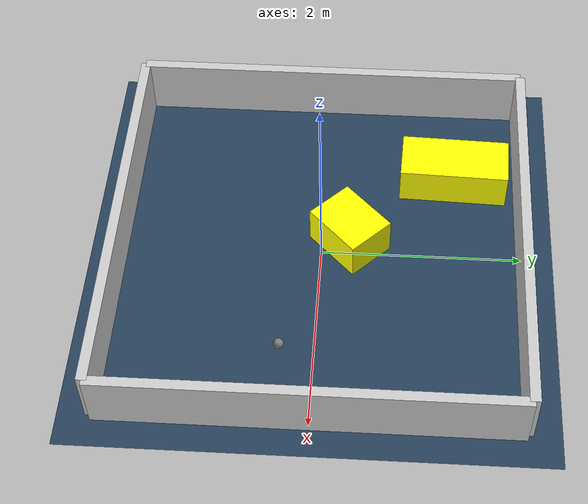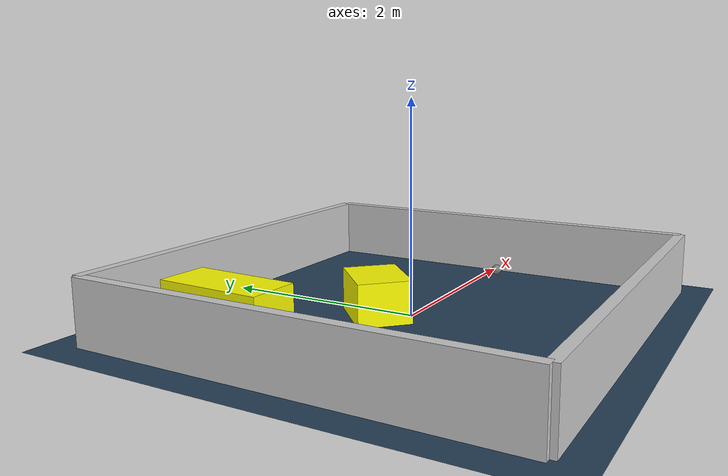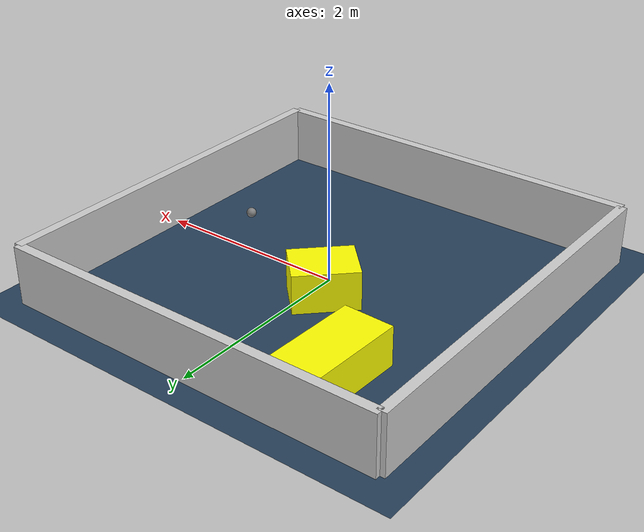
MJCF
<?xml version="1.0" ?>
<mujoco model="generated_environment">
  <option timestep="0.01" integrator="RK4" cone="elliptic"/>
  <default>
    <geom density="1"/>
  </default>
  <asset>
    <texture builtin="gradient" height="3072" rgb1="0.3 0.5 0.7" rgb2="0 0 0" type="skybox" width="512"/>
    <texture builtin="checker" height="300" mark="edge" markrgb="0.8 0.8 0.8" name="groundplane" rgb1="0.2 0.3 0.4" rgb2="0.1 0.2 0.3" type="2d" width="300"/>
    <material name="groundplane" reflectance="0.2" texrepeat="5 5" texture="groundplane" texuniform="true"/>
    <material name="robot" rgba="0.0 1.0 0.0 1"/>
  </asset>
  <worldbody>
    <light dir="0 0 -1" directional="true" pos="0 0 1.5"/>
    <geom condim="4" friction="1.0 0.005 0.001" material="groundplane" name="floor" size="0 0 0.05" type="plane"/>
    <body name="walls">
      <geom name="wall_1" condim="4" pos="-2.0 0.0 0.3" rgba="0.800000011920929 0.800000011920929 0.800000011920929 1.0" size="0.05 2.0 0.3" type="box"/>
      <geom name="wall_2" condim="4" pos="2.0 0.0 0.3" rgba="0.800000011920929 0.800000011920929 0.800000011920929 1.0" size="0.05 2.0 0.3" type="box"/>
      <geom name="wall_3" condim="4" pos="0.0 -2.0 0.3" rgba="0.800000011920929 0.800000011920929 0.800000011920929 1.0" size="2.0 0.05 0.3" type="box"/>
      <geom name="wall_4" condim="4" pos="0.0 2.0 0.3" rgba="0.800000011920929 0.800000011920929 0.800000011920929 1.0" size="2.0 0.05 0.3" type="box"/>
    </body>
    <body name="robot">
      <joint name="joint_x" type="slide" pos="0 0 0" axis="1 0 0"/>
      <joint name="joint_y" type="slide" pos="0 0 0" axis="0 1 0"/>
      <geom name="robot" type="sphere" pos="1.2539541434108732 -0.32514585276301156 0.2" size="0.05" mass="5." friction="1.0 0.005 0.0001" condim="4"/>
      <site name="sensor_ball"/>
    </body>
    <body name="obstacle_1_movable">
      <geom name="obstacle_1_movable" condim="4" pos="-0.1447715278777908 0.2805826576595567 0.2" euler="0 0 314.53707334433824" friction="1.0 0.005 0.001" rgba="1 1 0 1" size="0.25257521789790965 0.32171965869222063 0.2" type="box" mass="0.1"/>
      <joint type="free"/>
    </body>
    <body name="obstacle_2_movable">
      <geom name="obstacle_2_movable" condim="4" pos="-0.9964185816640523 1.3228692858866982 0.2" euler="0 0 267.97269881432766" friction="1.0 0.005 0.001" rgba="1 1 0 1" size="0.5468948226815984 0.25726806379364214 0.2" type="box" mass="0.1"/>
      <joint type="free"/>
    </body>
  </worldbody>
  <actuator>
    <motor name="actuator_x" joint="joint_x" gear="1" ctrlrange="-1 1"/>
    <motor name="actuator_y" joint="joint_y" gear="1" ctrlrange="-1 1"/>
  </actuator>
</mujoco>
